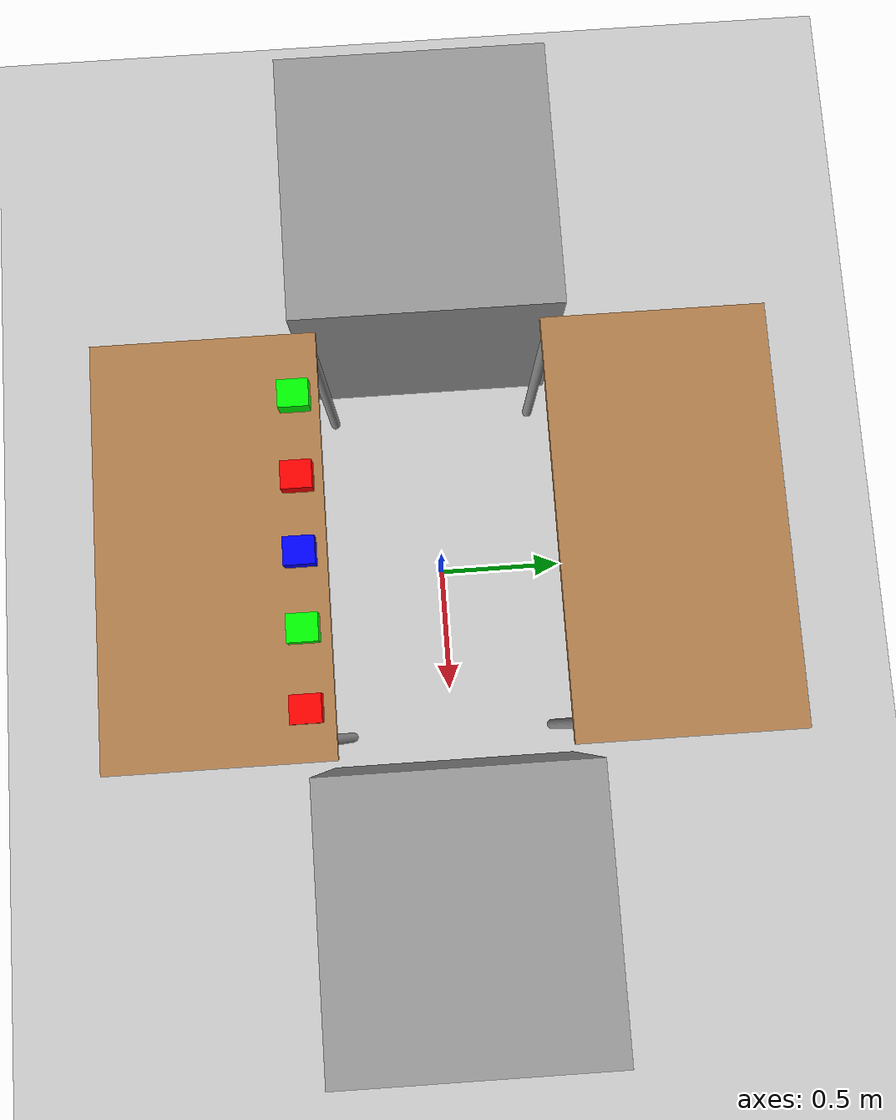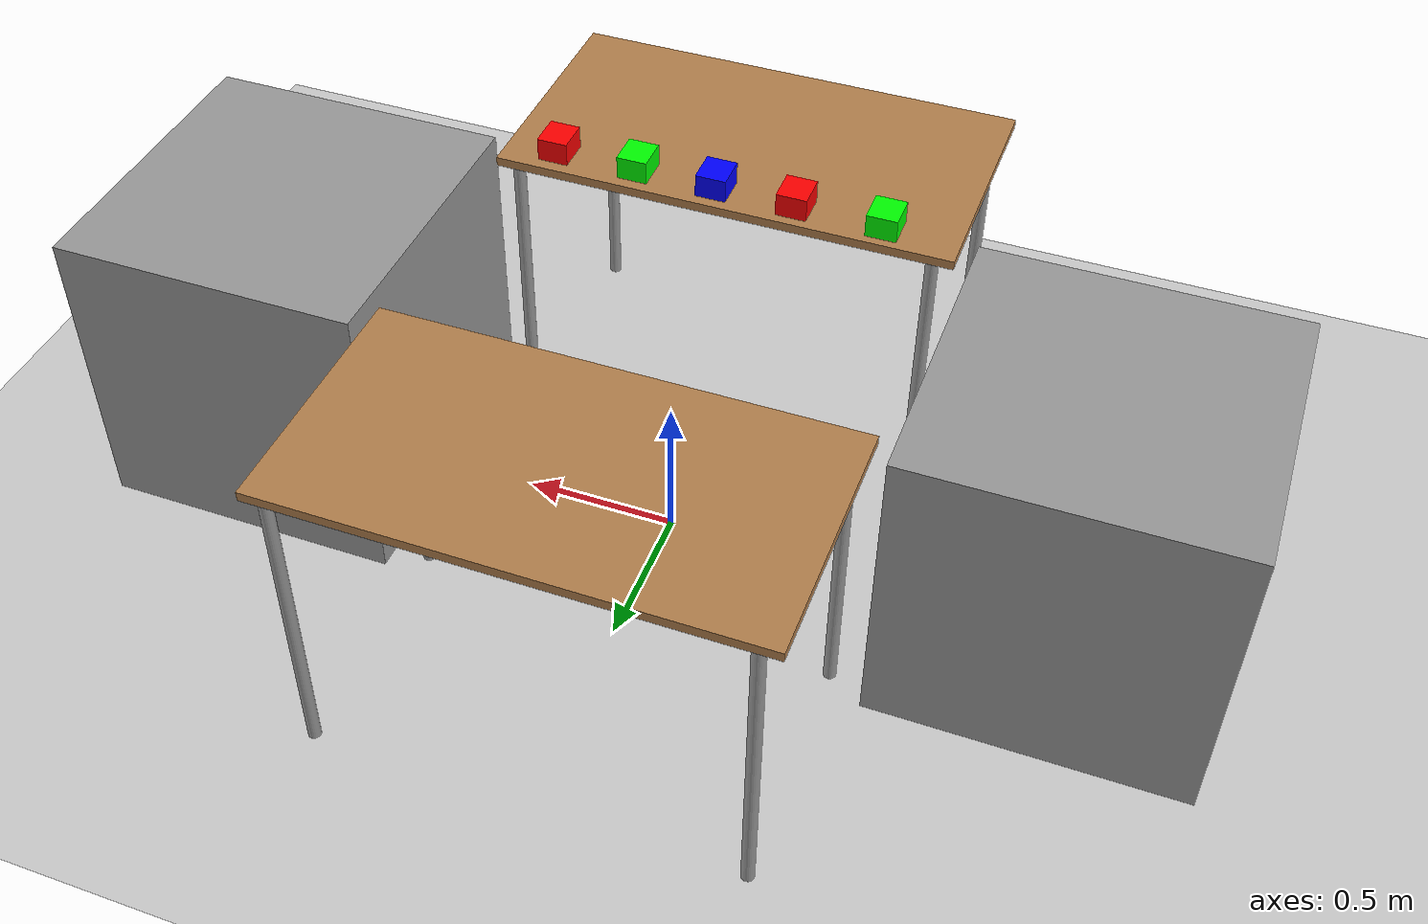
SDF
<sdf version="1.7">
 <world name="default">
  <light name="sun" type="directional">
   <pose>0 0 10 0 -0 0</pose>
   <diffuse>0.8 0.8 0.8 1</diffuse>
   <specular>0.2 0.2 0.2 1</specular>
   <attenuation>
    <range>1000</range>
    <constant>0.9</constant>
    <linear>0.01</linear>
    <quadratic>0.001</quadratic>
   </attenuation>
   <direction>-0.5 0.1 -0.9</direction>
   <spot><inner_angle>0</inner_angle><outer_angle>0</outer_angle><falloff>0</falloff></spot>
  </light>
  <model name="ground_plane">
   <static>1</static>
   <link name="link">
    <collision name="collision">
     <geometry><plane><normal>0 0 1</normal><size>100 100</size></plane></geometry>
     <surface><friction><ode><mu>100</mu><mu2>50</mu2></ode></friction></surface>
    </collision>
    <visual name="visual">
     <cast_shadows>0</cast_shadows>
     <geometry><plane><normal>0 0 1</normal><size>100 100</size></plane></geometry>
     <material>
      <script><uri>file://media/materials/scripts/gazebo.material</uri><name>Gazebo/Grey</name></script>
     </material>
    </visual>
   </link>
  </model>
  <gravity>0 0 -9.8</gravity>
  <magnetic_field>6e-06 2.3e-05 -4.2e-05</magnetic_field>
  <atmosphere type="adiabatic"/>
  <physics type="ode">
   <max_step_size>0.001</max_step_size>
   <real_time_factor>1</real_time_factor>
   <real_time_update_rate>1000</real_time_update_rate>
  </physics>
  <scene><ambient>0.4 0.4 0.4 1</ambient><background>0.7 0.7 0.7 1</background><shadows>1</shadows></scene>
  <audio><device>default</device></audio>
  <spherical_coordinates>
   <surface_model>EARTH_WGS84</surface_model>
   <latitude_deg>0</latitude_deg>
   <longitude_deg>0</longitude_deg>
   <elevation>0</elevation>
   <heading_deg>0</heading_deg>
  </spherical_coordinates>
  <model name="table">
   <static>1</static>
   <link name="link">
    <collision name="surface">
     <pose>0 0 1 0 -0 0</pose>
     <geometry><box><size>1.5 0.8 0.03</size></box></geometry>
     <surface><friction><ode><mu>0.6</mu><mu2>0.6</mu2></ode></friction></surface>
    </collision>
    <visual name="visual1">
     <pose>0 0 1 0 -0 0</pose>
     <geometry><box><size>1.5 0.8 0.03</size></box></geometry>
     <material>
      <script><uri>file://media/materials/scripts/gazebo.material</uri><name>Gazebo/Wood</name></script>
     </material>
    </visual>
    <collision name="front_left_leg">
     <pose>0.68 0.38 0.5 0 -0 0</pose>
     <geometry><cylinder><radius>0.02</radius><length>1</length></cylinder></geometry>
    </collision>
    <visual name="front_left_leg">
     <pose>0.68 0.38 0.5 0 -0 0</pose>
     <geometry><cylinder><radius>0.02</radius><length>1</length></cylinder></geometry>
     <material>
      <script><uri>file://media/materials/scripts/gazebo.material</uri><name>Gazebo/Grey</name></script>
     </material>
    </visual>
    <collision name="front_right_leg">
     <pose>0.68 -0.38 0.5 0 -0 0</pose>
     <geometry><cylinder><radius>0.02</radius><length>1</length></cylinder></geometry>
    </collision>
    <visual name="front_right_leg">
     <pose>0.68 -0.38 0.5 0 -0 0</pose>
     <geometry><cylinder><radius>0.02</radius><length>1</length></cylinder></geometry>
     <material>
      <script><uri>file://media/materials/scripts/gazebo.material</uri><name>Gazebo/Grey</name></script>
     </material>
    </visual>
    <collision name="back_right_leg">
     <pose>-0.68 -0.38 0.5 0 -0 0</pose>
     <geometry><cylinder><radius>0.02</radius><length>1</length></cylinder></geometry>
    </collision>
    <visual name="back_right_leg">
     <pose>-0.68 -0.38 0.5 0 -0 0</pose>
     <geometry><cylinder><radius>0.02</radius><length>1</length></cylinder></geometry>
     <material>
      <script><uri>file://media/materials/scripts/gazebo.material</uri><name>Gazebo/Grey</name></script>
     </material>
    </visual>
    <collision name="back_left_leg">
     <pose>-0.68 0.38 0.5 0 -0 0</pose>
     <geometry><cylinder><radius>0.02</radius><length>1</length></cylinder></geometry>
    </collision>
    <visual name="back_left_leg">
     <pose>-0.68 0.38 0.5 0 -0 0</pose>
     <geometry><cylinder><radius>0.02</radius><length>1</length></cylinder></geometry>
     <material>
      <script><uri>file://media/materials/scripts/gazebo.material</uri><name>Gazebo/Grey</name></script>
     </material>
    </visual>
   </link>
   <pose>0 -0.8 0 0 -0 0</pose>
  </model>
  <model name="table_0">
   <static>1</static>
   <link name="link">
    <collision name="surface">
     <pose>0 0 1 0 -0 0</pose>
     <geometry><box><size>1.5 0.8 0.03</size></box></geometry>
     <surface><friction><ode><mu>0.6</mu><mu2>0.6</mu2></ode></friction></surface>
    </collision>
    <visual name="visual1">
     <pose>0 0 1 0 -0 0</pose>
     <geometry><box><size>1.5 0.8 0.03</size></box></geometry>
     <material>
      <script><uri>file://media/materials/scripts/gazebo.material</uri><name>Gazebo/Wood</name></script>
     </material>
    </visual>
    <collision name="front_left_leg">
     <pose>0.68 0.38 0.5 0 -0 0</pose>
     <geometry><cylinder><radius>0.02</radius><length>1</length></cylinder></geometry>
    </collision>
    <visual name="front_left_leg">
     <pose>0.68 0.38 0.5 0 -0 0</pose>
     <geometry><cylinder><radius>0.02</radius><length>1</length></cylinder></geometry>
     <material>
      <script><uri>file://media/materials/scripts/gazebo.material</uri><name>Gazebo/Grey</name></script>
     </material>
    </visual>
    <collision name="front_right_leg">
     <pose>0.68 -0.38 0.5 0 -0 0</pose>
     <geometry><cylinder><radius>0.02</radius><length>1</length></cylinder></geometry>
    </collision>
    <visual name="front_right_leg">
     <pose>0.68 -0.38 0.5 0 -0 0</pose>
     <geometry><cylinder><radius>0.02</radius><length>1</length></cylinder></geometry>
     <material>
      <script><uri>file://media/materials/scripts/gazebo.material</uri><name>Gazebo/Grey</name></script>
     </material>
    </visual>
    <collision name="back_right_leg">
     <pose>-0.68 -0.38 0.5 0 -0 0</pose>
     <geometry><cylinder><radius>0.02</radius><length>1</length></cylinder></geometry>
    </collision>
    <visual name="back_right_leg">
     <pose>-0.68 -0.38 0.5 0 -0 0</pose>
     <geometry><cylinder><radius>0.02</radius><length>1</length></cylinder></geometry>
     <material>
      <script><uri>file://media/materials/scripts/gazebo.material</uri><name>Gazebo/Grey</name></script>
     </material>
    </visual>
    <collision name="back_left_leg">
     <pose>-0.68 0.38 0.5 0 -0 0</pose>
     <geometry><cylinder><radius>0.02</radius><length>1</length></cylinder></geometry>
    </collision>
    <visual name="back_left_leg">
     <pose>-0.68 0.38 0.5 0 -0 0</pose>
     <geometry><cylinder><radius>0.02</radius><length>1</length></cylinder></geometry>
     <material>
      <script><uri>file://media/materials/scripts/gazebo.material</uri><name>Gazebo/Grey</name></script>
     </material>
    </visual>
   </link>
   <pose>0 0.8 0 0 -0 0</pose>
  </model>
  <model name="redbox">
   <link name="link">
    <inertial>
     <mass>1</mass>
     <inertia>
      <ixx>0.166667</ixx>
      <ixy>0</ixy>
      <ixz>0</ixz>
      <iyy>0.166667</iyy>
      <iyz>0</iyz>
      <izz>0.166667</izz>
     </inertia>
    </inertial>
    <visual name="visual">
     <geometry><box><size>0.099068 0.109444 0.076291</size></box></geometry>
     <material>
      <script><name>Gazebo/Grey</name><uri>file://media/materials/scripts/gazebo.material</uri></script>
      <shader type="pixel"><normal_map>__default__</normal_map></shader>
      <ambient>1 0 0 0</ambient>
      <diffuse>0.7 0.7 0.7 1</diffuse>
      <specular>0.01 0.01 0.01 1</specular>
      <emissive>0 0 0 1</emissive>
     </material>
    </visual>
    <collision name="collision">
     <geometry><box><size>0.099068 0.109444 0.076291</size></box></geometry>
     <surface>
      <friction>
       <ode><mu>1</mu><mu2>1</mu2><fdir1>0 0 0</fdir1><slip1>0</slip1><slip2>0</slip2></ode>
       <torsional>
        <coefficient>1</coefficient>
        <patch_radius>0</patch_radius>
        <surface_radius>0</surface_radius>
        <use_patch_radius>1</use_patch_radius>
        <ode><slip>0</slip></ode>
       </torsional>
      </friction>
      <bounce><restitution_coefficient>0</restitution_coefficient><threshold>1e+06</threshold></bounce>
      <contact>
       <collide_without_contact>0</collide_without_contact>
       <collide_without_contact_bitmask>1</collide_without_contact_bitmask>
       <collide_bitmask>1</collide_bitmask>
       <ode>
        <soft_cfm>0</soft_cfm>
        <soft_erp>0.2</soft_erp>
        <kp>1e+13</kp>
        <kd>1</kd>
        <max_vel>0.01</max_vel>
        <min_depth>0</min_depth>
       </ode>
       <bullet>
        <split_impulse>1</split_impulse>
        <split_impulse_penetration_threshold>-0.01</split_impulse_penetration_threshold>
        <soft_cfm>0</soft_cfm>
        <soft_erp>0.2</soft_erp>
        <kp>1e+13</kp>
        <kd>1</kd>
       </bullet>
      </contact>
     </surface>
    </collision>
   </link>
   <static>0</static>
   <pose>0.57148 -0.493803 1.05315 0 -0 3.1e-05</pose>
  </model>
  <model name="greenbox">
   <link name="link">
    <inertial>
     <mass>1</mass>
     <inertia>
      <ixx>0.166667</ixx>
      <ixy>0</ixy>
      <ixz>0</ixz>
      <iyy>0.166667</iyy>
      <iyz>0</iyz>
      <izz>0.166667</izz>
     </inertia>
    </inertial>
    <visual name="visual">
     <geometry><box><size>0.099068 0.109444 0.076291</size></box></geometry>
     <material>
      <script><name>Gazebo/Grey</name><uri>file://media/materials/scripts/gazebo.material</uri></script>
      <shader type="pixel"><normal_map>__default__</normal_map></shader>
      <ambient>0 1 0 0</ambient>
      <diffuse>0.7 0.7 0.7 1</diffuse>
      <specular>0.01 0.01 0.01 1</specular>
      <emissive>0 0 0 1</emissive>
     </material>
    </visual>
    <collision name="collision">
     <geometry><box><size>0.099068 0.109444 0.076291</size></box></geometry>
     <surface>
      <friction>
       <ode><mu>1</mu><mu2>1</mu2><fdir1>0 0 0</fdir1><slip1>0</slip1><slip2>0</slip2></ode>
       <torsional>
        <coefficient>1</coefficient>
        <patch_radius>0</patch_radius>
        <surface_radius>0</surface_radius>
        <use_patch_radius>1</use_patch_radius>
        <ode><slip>0</slip></ode>
       </torsional>
      </friction>
      <bounce><restitution_coefficient>0</restitution_coefficient><threshold>1e+06</threshold></bounce>
      <contact>
       <collide_without_contact>0</collide_without_contact>
       <collide_without_contact_bitmask>1</collide_without_contact_bitmask>
       <collide_bitmask>1</collide_bitmask>
       <ode>
        <soft_cfm>0</soft_cfm>
        <soft_erp>0.2</soft_erp>
        <kp>1e+13</kp>
        <kd>1</kd>
        <max_vel>0.01</max_vel>
        <min_depth>0</min_depth>
       </ode>
       <bullet>
        <split_impulse>1</split_impulse>
        <split_impulse_penetration_threshold>-0.01</split_impulse_penetration_threshold>
        <soft_cfm>0</soft_cfm>
        <soft_erp>0.2</soft_erp>
        <kp>1e+13</kp>
        <kd>1</kd>
       </bullet>
      </contact>
     </surface>
    </collision>
   </link>
   <static>0</static>
   <pose>0.300047 -0.491589 1.05315 0 -0 5e-05</pose>
  </model>
  <model name="bluebox">
   <link name="link">
    <inertial>
     <mass>1</mass>
     <inertia>
      <ixx>0.166667</ixx>
      <ixy>0</ixy>
      <ixz>0</ixz>
      <iyy>0.166667</iyy>
      <iyz>0</iyz>
      <izz>0.166667</izz>
     </inertia>
    </inertial>
    <visual name="visual">
     <geometry><box><size>0.099068 0.109444 0.076291</size></box></geometry>
     <material>
      <script><name>Gazebo/Grey</name><uri>file://media/materials/scripts/gazebo.material</uri></script>
      <shader type="pixel"><normal_map>__default__</normal_map></shader>
      <ambient>0 0 1 0</ambient>
      <diffuse>0.7 0.7 0.7 1</diffuse>
      <specular>0.01 0.01 0.01 1</specular>
      <emissive>0 0 0 1</emissive>
     </material>
    </visual>
    <collision name="collision">
     <geometry><box><size>0.099068 0.109444 0.076291</size></box></geometry>
     <surface>
      <friction>
       <ode><mu>1</mu><mu2>1</mu2><fdir1>0 0 0</fdir1><slip1>0</slip1><slip2>0</slip2></ode>
       <torsional>
        <coefficient>1</coefficient>
        <patch_radius>0</patch_radius>
        <surface_radius>0</surface_radius>
        <use_patch_radius>1</use_patch_radius>
        <ode><slip>0</slip></ode>
       </torsional>
      </friction>
      <bounce><restitution_coefficient>0</restitution_coefficient><threshold>1e+06</threshold></bounce>
      <contact>
       <collide_without_contact>0</collide_without_contact>
       <collide_without_contact_bitmask>1</collide_without_contact_bitmask>
       <collide_bitmask>1</collide_bitmask>
       <ode>
        <soft_cfm>0</soft_cfm>
        <soft_erp>0.2</soft_erp>
        <kp>1e+13</kp>
        <kd>1</kd>
        <max_vel>0.01</max_vel>
        <min_depth>0</min_depth>
       </ode>
       <bullet>
        <split_impulse>1</split_impulse>
        <split_impulse_penetration_threshold>-0.01</split_impulse_penetration_threshold>
        <soft_cfm>0</soft_cfm>
        <soft_erp>0.2</soft_erp>
        <kp>1e+13</kp>
        <kd>1</kd>
       </bullet>
      </contact>
     </surface>
    </collision>
   </link>
   <static>0</static>
   <pose>0.037178 -0.489495 1.05315 0 -0 3.6e-05</pose>
  </model>
  <model name="redbox2">
   <link name="link">
    <inertial>
     <mass>1</mass>
     <inertia>
      <ixx>0.166667</ixx>
      <ixy>0</ixy>
      <ixz>0</ixz>
      <iyy>0.166667</iyy>
      <iyz>0</iyz>
      <izz>0.166667</izz>
     </inertia>
    </inertial>
    <visual name="visual">
     <geometry><box><size>0.099068 0.109444 0.076291</size></box></geometry>
     <material>
      <script><name>Gazebo/Grey</name><uri>file://media/materials/scripts/gazebo.material</uri></script>
      <shader type="pixel"><normal_map>__default__</normal_map></shader>
      <ambient>1 0 0 0</ambient>
      <diffuse>0.7 0.7 0.7 1</diffuse>
      <specular>0.01 0.01 0.01 1</specular>
      <emissive>0 0 0 1</emissive>
     </material>
    </visual>
    <collision name="collision">
     <geometry><box><size>0.099068 0.109444 0.076291</size></box></geometry>
     <surface>
      <friction>
       <ode><mu>1</mu><mu2>1</mu2><fdir1>0 0 0</fdir1><slip1>0</slip1><slip2>0</slip2></ode>
       <torsional>
        <coefficient>1</coefficient>
        <patch_radius>0</patch_radius>
        <surface_radius>0</surface_radius>
        <use_patch_radius>1</use_patch_radius>
        <ode><slip>0</slip></ode>
       </torsional>
      </friction>
      <bounce><restitution_coefficient>0</restitution_coefficient><threshold>1e+06</threshold></bounce>
      <contact>
       <collide_without_contact>0</collide_without_contact>
       <collide_without_contact_bitmask>1</collide_without_contact_bitmask>
       <collide_bitmask>1</collide_bitmask>
       <ode>
        <soft_cfm>0</soft_cfm>
        <soft_erp>0.2</soft_erp>
        <kp>1e+13</kp>
        <kd>1</kd>
        <max_vel>0.01</max_vel>
        <min_depth>0</min_depth>
       </ode>
       <bullet>
        <split_impulse>1</split_impulse>
        <split_impulse_penetration_threshold>-0.01</split_impulse_penetration_threshold>
        <soft_cfm>0</soft_cfm>
        <soft_erp>0.2</soft_erp>
        <kp>1e+13</kp>
        <kd>1</kd>
       </bullet>
      </contact>
     </surface>
    </collision>
   </link>
   <static>0</static>
   <pose>-0.225961 -0.485848 1.05314 -0 -1e-06 -0.000135</pose>
  </model>
  <model name="greenbox2">
   <link name="link">
    <inertial>
     <mass>1</mass>
     <inertia>
      <ixx>0.166667</ixx>
      <ixy>0</ixy>
      <ixz>0</ixz>
      <iyy>0.166667</iyy>
      <iyz>0</iyz>
      <izz>0.166667</izz>
     </inertia>
    </inertial>
    <visual name="visual">
     <geometry><box><size>0.099068 0.109444 0.076291</size></box></geometry>
     <material>
      <script><name>Gazebo/Grey</name><uri>file://media/materials/scripts/gazebo.material</uri></script>
      <shader type="pixel"><normal_map>__default__</normal_map></shader>
      <ambient>0 1 0 0</ambient>
      <diffuse>0.7 0.7 0.7 1</diffuse>
      <specular>0.01 0.01 0.01 1</specular>
      <emissive>0 0 0 1</emissive>
     </material>
    </visual>
    <collision name="collision">
     <geometry><box><size>0.099068 0.109444 0.076291</size></box></geometry>
     <surface>
      <friction>
       <ode><mu>1</mu><mu2>1</mu2><fdir1>0 0 0</fdir1><slip1>0</slip1><slip2>0</slip2></ode>
       <torsional>
        <coefficient>1</coefficient>
        <patch_radius>0</patch_radius>
        <surface_radius>0</surface_radius>
        <use_patch_radius>1</use_patch_radius>
        <ode><slip>0</slip></ode>
       </torsional>
      </friction>
      <bounce><restitution_coefficient>0</restitution_coefficient><threshold>1e+06</threshold></bounce>
      <contact>
       <collide_without_contact>0</collide_without_contact>
       <collide_without_contact_bitmask>1</collide_without_contact_bitmask>
       <collide_bitmask>1</collide_bitmask>
       <ode>
        <soft_cfm>0</soft_cfm>
        <soft_erp>0.2</soft_erp>
        <kp>1e+13</kp>
        <kd>1</kd>
        <max_vel>0.01</max_vel>
        <min_depth>0</min_depth>
       </ode>
       <bullet>
        <split_impulse>1</split_impulse>
        <split_impulse_penetration_threshold>-0.01</split_impulse_penetration_threshold>
        <soft_cfm>0</soft_cfm>
        <soft_erp>0.2</soft_erp>
        <kp>1e+13</kp>
        <kd>1</kd>
       </bullet>
      </contact>
     </surface>
    </collision>
   </link>
   <static>0</static>
   <pose>-0.512731 -0.482653 1.05314 -3e-06 0 3.2e-05</pose>
  </model>
  <model name="unit_box">
   <pose>1.3 0 0.5 0 -0 0</pose>
   <link name="link">
    <inertial>
     <mass>1</mass>
     <inertia>
      <ixx>0.166667</ixx>
      <ixy>0</ixy>
      <ixz>0</ixz>
      <iyy>0.166667</iyy>
      <iyz>0</iyz>
      <izz>0.166667</izz>
     </inertia>
    </inertial>
    <collision name="collision"><geometry><box><size>1 1 1.03005</size></box></geometry></collision>
    <visual name="visual">
     <geometry><box><size>1 1 1.03005</size></box></geometry>
     <material>
      <script><name>Gazebo/Grey</name><uri>file://media/materials/scripts/gazebo.material</uri></script>
     </material>
    </visual>
   </link>
  </model>
  <model name="unit_box_clone">
   <pose>-1.3 0 0.5 0 -0 0</pose>
   <link name="link">
    <inertial>
     <mass>1</mass>
     <inertia>
      <ixx>0.166667</ixx>
      <ixy>0</ixy>
      <ixz>0</ixz>
      <iyy>0.166667</iyy>
      <iyz>0</iyz>
      <izz>0.166667</izz>
     </inertia>
    </inertial>
    <collision name="collision"><geometry><box><size>1 1 1.03005</size></box></geometry></collision>
    <visual name="visual">
     <geometry><box><size>1 1 1.03005</size></box></geometry>
     <material>
      <script><name>Gazebo/Grey</name><uri>file://media/materials/scripts/gazebo.material</uri></script>
     </material>
    </visual>
   </link>
  </model>
 </world>
</sdf>
